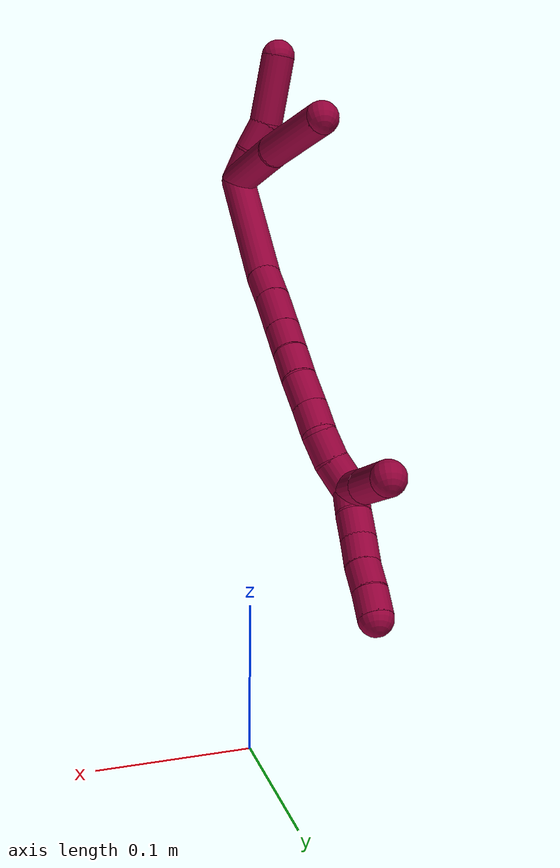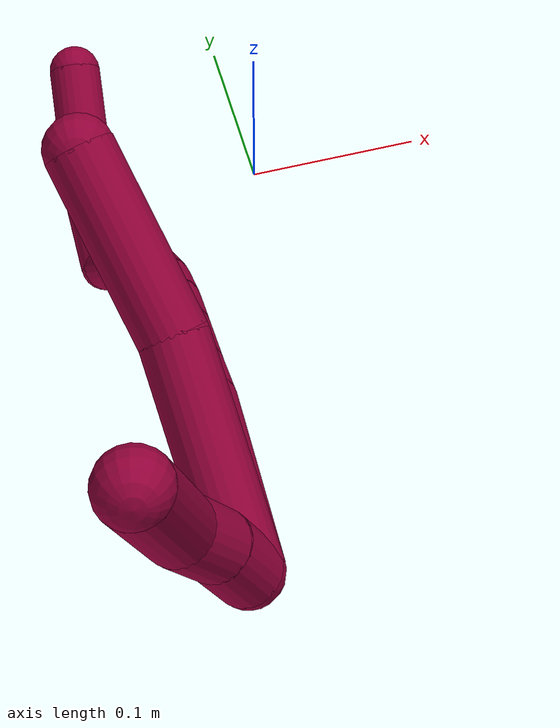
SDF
<sdf version="1.7">
 <world name="default">
  <model name="8">
   <static>0</static>
   <link name="8">
    <collision name="collision-cylinder-e_1_2_8">
     <pose>-0.009132 0.034685 -0.018076 -2.05123 -0.229365 0.375376</pose>
     <geometry><cylinder><radius>0.0125</radius><length>0.080329</length></cylinder></geometry>
     <surface>
      <friction><ode><mu>1.16</mu><mu2>1.16</mu2><slip1>0</slip1><slip2>0</slip2></ode></friction>
      <contact><ode><kp>1e+06</kp><kd>1</kd><max_vel>0</max_vel><min_depth>0.001</min_depth></ode></contact>
     </surface>
    </collision>
    <visual name="visual-cylinder-e_1_2_8">
     <pose>-0.009132 0.034685 -0.018076 -2.05123 -0.229365 0.375376</pose>
     <geometry><cylinder><radius>0.0125</radius><length>0.080329</length></cylinder></geometry>
     <material><ambient>0.584314 0 0.227451 1</ambient></material>
    </visual>
    <collision name="collision-cylinder-e_2_8_6">
     <pose>-0.031387 0.098957 -0.049031 -1.98135 -0.386267 0.580023</pose>
     <geometry><cylinder><radius>0.0125</radius><length>0.069671</length></cylinder></geometry>
     <surface>
      <friction><ode><mu>1.16</mu><mu2>1.16</mu2><slip1>0</slip1><slip2>0</slip2></ode></friction>
      <contact><ode><kp>1e+06</kp><kd>1</kd><max_vel>0</max_vel><min_depth>0.001</min_depth></ode></contact>
     </surface>
    </collision>
    <visual name="visual-cylinder-e_2_8_6">
     <pose>-0.031387 0.098957 -0.049031 -1.98135 -0.386267 0.580023</pose>
     <geometry><cylinder><radius>0.0125</radius><length>0.069671</length></cylinder></geometry>
     <material><ambient>0.584314 0 0.227451 1</ambient></material>
    </visual>
    <collision name="collision-cylinder-e_1_2_9">
     <pose>-0.004806 0.009241 0.006156 -0.983118 -0.408482 0.220888</pose>
     <geometry><cylinder><radius>0.0125</radius><length>0.024198</length></cylinder></geometry>
     <surface>
      <friction><ode><mu>1.16</mu><mu2>1.16</mu2><slip1>0</slip1><slip2>0</slip2></ode></friction>
      <contact><ode><kp>1e+06</kp><kd>1</kd><max_vel>0</max_vel><min_depth>0.001</min_depth></ode></contact>
     </surface>
    </collision>
    <visual name="visual-cylinder-e_1_2_9">
     <pose>-0.004806 0.009241 0.006156 -0.983118 -0.408482 0.220888</pose>
     <geometry><cylinder><radius>0.0125</radius><length>0.024198</length></cylinder></geometry>
     <material><ambient>0.584314 0 0.227451 1</ambient></material>
    </visual>
    <collision name="collision-cylinder-e_2_9_10">
     <pose>-0.015302 0.026316 0.019151 -0.853154 -0.500688 0.231393</pose>
     <geometry><cylinder><radius>0.0125</radius><length>0.023709</length></cylinder></geometry>
     <surface>
      <friction><ode><mu>1.16</mu><mu2>1.16</mu2><slip1>0</slip1><slip2>0</slip2></ode></friction>
      <contact><ode><kp>1e+06</kp><kd>1</kd><max_vel>0</max_vel><min_depth>0.001</min_depth></ode></contact>
     </surface>
    </collision>
    <visual name="visual-cylinder-e_2_9_10">
     <pose>-0.015302 0.026316 0.019151 -0.853154 -0.500688 0.231393</pose>
     <geometry><cylinder><radius>0.0125</radius><length>0.023709</length></cylinder></geometry>
     <material><ambient>0.584314 0 0.227451 1</ambient></material>
    </visual>
    <collision name="collision-cylinder-e_3_10_5">
     <pose>-0.02606 0.052078 0.044192 -0.777778 -0.195809 0.080448</pose>
     <geometry><cylinder><radius>0.0125</radius><length>0.052094</length></cylinder></geometry>
     <surface>
      <friction><ode><mu>1.16</mu><mu2>1.16</mu2><slip1>0</slip1><slip2>0</slip2></ode></friction>
      <contact><ode><kp>1e+06</kp><kd>1</kd><max_vel>0</max_vel><min_depth>0.001</min_depth></ode></contact>
     </surface>
    </collision>
    <visual name="visual-cylinder-e_3_10_5">
     <pose>-0.02606 0.052078 0.044192 -0.777778 -0.195809 0.080448</pose>
     <geometry><cylinder><radius>0.0125</radius><length>0.052094</length></cylinder></geometry>
     <material><ambient>0.584314 0 0.227451 1</ambient></material>
    </visual>
    <collision name="collision-cylinder-e_1_2_11">
     <pose>-0.004633 0.004849 -0.053194 -3.05069 -0.086515 1.5213</pose>
     <geometry><cylinder><radius>0.0125</radius><length>0.107231</length></cylinder></geometry>
     <surface>
      <friction><ode><mu>1.16</mu><mu2>1.16</mu2><slip1>0</slip1><slip2>0</slip2></ode></friction>
      <contact><ode><kp>1e+06</kp><kd>1</kd><max_vel>0</max_vel><min_depth>0.001</min_depth></ode></contact>
     </surface>
    </collision>
    <visual name="visual-cylinder-e_1_2_11">
     <pose>-0.004633 0.004849 -0.053194 -3.05069 -0.086515 1.5213</pose>
     <geometry><cylinder><radius>0.0125</radius><length>0.107231</length></cylinder></geometry>
     <material><ambient>0.584314 0 0.227451 1</ambient></material>
    </visual>
    <collision name="collision-cylinder-e_2_11_12">
     <pose>-0.011095 0.011277 -0.118367 -3.01046 -0.150287 1.70714</pose>
     <geometry><cylinder><radius>0.0125</radius><length>0.02444</length></cylinder></geometry>
     <surface>
      <friction><ode><mu>1.16</mu><mu2>1.16</mu2><slip1>0</slip1><slip2>0</slip2></ode></friction>
      <contact><ode><kp>1e+06</kp><kd>1</kd><max_vel>0</max_vel><min_depth>0.001</min_depth></ode></contact>
     </surface>
    </collision>
    <visual name="visual-cylinder-e_2_11_12">
     <pose>-0.011095 0.011277 -0.118367 -3.01046 -0.150287 1.70714</pose>
     <geometry><cylinder><radius>0.0125</radius><length>0.02444</length></cylinder></geometry>
     <material><ambient>0.584314 0 0.227451 1</ambient></material>
    </visual>
    <collision name="collision-cylinder-e_3_12_13">
     <pose>-0.014912 0.014507 -0.145841 -3.03554 -0.126818 1.7491</pose>
     <geometry><cylinder><radius>0.0125</radius><length>0.031418</length></cylinder></geometry>
     <surface>
      <friction><ode><mu>1.16</mu><mu2>1.16</mu2><slip1>0</slip1><slip2>0</slip2></ode></friction>
      <contact><ode><kp>1e+06</kp><kd>1</kd><max_vel>0</max_vel><min_depth>0.001</min_depth></ode></contact>
     </surface>
    </collision>
    <visual name="visual-cylinder-e_3_12_13">
     <pose>-0.014912 0.014507 -0.145841 -3.03554 -0.126818 1.7491</pose>
     <geometry><cylinder><radius>0.0125</radius><length>0.031418</length></cylinder></geometry>
     <material><ambient>0.584314 0 0.227451 1</ambient></material>
    </visual>
    <collision name="collision-cylinder-e_4_13_14">
     <pose>-0.018396 0.017324 -0.173049 -3.04221 -0.126536 1.8105</pose>
     <geometry><cylinder><radius>0.0125</radius><length>0.023731</length></cylinder></geometry>
     <surface>
      <friction><ode><mu>1.16</mu><mu2>1.16</mu2><slip1>0</slip1><slip2>0</slip2></ode></friction>
      <contact><ode><kp>1e+06</kp><kd>1</kd><max_vel>0</max_vel><min_depth>0.001</min_depth></ode></contact>
     </surface>
    </collision>
    <visual name="visual-cylinder-e_4_13_14">
     <pose>-0.018396 0.017324 -0.173049 -3.04221 -0.126536 1.8105</pose>
     <geometry><cylinder><radius>0.0125</radius><length>0.023731</length></cylinder></geometry>
     <material><ambient>0.584314 0 0.227451 1</ambient></material>
    </visual>
    <collision name="collision-cylinder-e_5_14_15">
     <pose>-0.021649 0.018695 -0.196225 -3.1239 -0.151973 2.91029</pose>
     <geometry><cylinder><radius>0.0125</radius><length>0.023198</length></cylinder></geometry>
     <surface>
      <friction><ode><mu>1.16</mu><mu2>1.16</mu2><slip1>0</slip1><slip2>0</slip2></ode></friction>
      <contact><ode><kp>1e+06</kp><kd>1</kd><max_vel>0</max_vel><min_depth>0.001</min_depth></ode></contact>
     </surface>
    </collision>
    <visual name="visual-cylinder-e_5_14_15">
     <pose>-0.021649 0.018695 -0.196225 -3.1239 -0.151973 2.91029</pose>
     <geometry><cylinder><radius>0.0125</radius><length>0.023198</length></cylinder></geometry>
     <material><ambient>0.584314 0 0.227451 1</ambient></material>
    </visual>
    <collision name="collision-cylinder-e_6_15_16">
     <pose>-0.026073 0.017675 -0.219308 3.03675 -0.224445 -2.27015</pose>
     <geometry><cylinder><radius>0.0125</radius><length>0.023969</length></cylinder></geometry>
     <surface>
      <friction><ode><mu>1.16</mu><mu2>1.16</mu2><slip1>0</slip1><slip2>0</slip2></ode></friction>
      <contact><ode><kp>1e+06</kp><kd>1</kd><max_vel>0</max_vel><min_depth>0.001</min_depth></ode></contact>
     </surface>
    </collision>
    <visual name="visual-cylinder-e_6_15_16">
     <pose>-0.026073 0.017675 -0.219308 3.03675 -0.224445 -2.27015</pose>
     <geometry><cylinder><radius>0.0125</radius><length>0.023969</length></cylinder></geometry>
     <material><ambient>0.584314 0 0.227451 1</ambient></material>
    </visual>
    <collision name="collision-cylinder-e_7_16_17">
     <pose>-0.030903 0.015344 -0.241416 3.0363 -0.202283 -2.1838</pose>
     <geometry><cylinder><radius>0.0125</radius><length>0.021532</length></cylinder></geometry>
     <surface>
      <friction><ode><mu>1.16</mu><mu2>1.16</mu2><slip1>0</slip1><slip2>0</slip2></ode></friction>
      <contact><ode><kp>1e+06</kp><kd>1</kd><max_vel>0</max_vel><min_depth>0.001</min_depth></ode></contact>
     </surface>
    </collision>
    <visual name="visual-cylinder-e_7_16_17">
     <pose>-0.030903 0.015344 -0.241416 3.0363 -0.202283 -2.1838</pose>
     <geometry><cylinder><radius>0.0125</radius><length>0.021532</length></cylinder></geometry>
     <material><ambient>0.584314 0 0.227451 1</ambient></material>
    </visual>
    <collision name="collision-cylinder-e_8_17_18">
     <pose>-0.036704 0.010271 -0.26086 2.72485 -0.355683 -1.40907</pose>
     <geometry><cylinder><radius>0.0125</radius><length>0.020896</length></cylinder></geometry>
     <surface>
      <friction><ode><mu>1.16</mu><mu2>1.16</mu2><slip1>0</slip1><slip2>0</slip2></ode></friction>
      <contact><ode><kp>1e+06</kp><kd>1</kd><max_vel>0</max_vel><min_depth>0.001</min_depth></ode></contact>
     </surface>
    </collision>
    <visual name="visual-cylinder-e_8_17_18">
     <pose>-0.036704 0.010271 -0.26086 2.72485 -0.355683 -1.40907</pose>
     <geometry><cylinder><radius>0.0125</radius><length>0.020896</length></cylinder></geometry>
     <material><ambient>0.584314 0 0.227451 1</ambient></material>
    </visual>
    <collision name="collision-cylinder-e_9_18_1">
     <pose>-0.046299 0.002057 -0.279063 2.71084 -0.529552 -1.7838</pose>
     <geometry><cylinder><radius>0.0125</radius><length>0.023586</length></cylinder></geometry>
     <surface>
      <friction><ode><mu>1.16</mu><mu2>1.16</mu2><slip1>0</slip1><slip2>0</slip2></ode></friction>
      <contact><ode><kp>1e+06</kp><kd>1</kd><max_vel>0</max_vel><min_depth>0.001</min_depth></ode></contact>
     </surface>
    </collision>
    <visual name="visual-cylinder-e_9_18_1">
     <pose>-0.046299 0.002057 -0.279063 2.71084 -0.529552 -1.7838</pose>
     <geometry><cylinder><radius>0.0125</radius><length>0.023586</length></cylinder></geometry>
     <material><ambient>0.584314 0 0.227451 1</ambient></material>
    </visual>
    <collision name="collision-cylinder-e_1_1_19">
     <pose>-0.052189 -0.002167 -0.298311 -3.13901 0.006745 -2.40929</pose>
     <geometry><cylinder><radius>0.0125</radius><length>0.02</length></cylinder></geometry>
     <surface>
      <friction><ode><mu>1.16</mu><mu2>1.16</mu2><slip1>0</slip1><slip2>0</slip2></ode></friction>
      <contact><ode><kp>1e+06</kp><kd>1</kd><max_vel>0</max_vel><min_depth>0.001</min_depth></ode></contact>
     </surface>
    </collision>
    <visual name="visual-cylinder-e_1_1_19">
     <pose>-0.052189 -0.002167 -0.298311 -3.13901 0.006745 -2.40929</pose>
     <geometry><cylinder><radius>0.0125</radius><length>0.02</length></cylinder></geometry>
     <material><ambient>0.584314 0 0.227451 1</ambient></material>
    </visual>
    <collision name="collision-cylinder-e_2_19_20">
     <pose>-0.052722 -0.003219 -0.318234 3.03341 -0.060118 -1.01383</pose>
     <geometry><cylinder><radius>0.0125</radius><length>0.02</length></cylinder></geometry>
     <surface>
      <friction><ode><mu>1.16</mu><mu2>1.16</mu2><slip1>0</slip1><slip2>0</slip2></ode></friction>
      <contact><ode><kp>1e+06</kp><kd>1</kd><max_vel>0</max_vel><min_depth>0.001</min_depth></ode></contact>
     </surface>
    </collision>
    <visual name="visual-cylinder-e_2_19_20">
     <pose>-0.052722 -0.003219 -0.318234 3.03341 -0.060118 -1.01383</pose>
     <geometry><cylinder><radius>0.0125</radius><length>0.02</length></cylinder></geometry>
     <material><ambient>0.584314 0 0.227451 1</ambient></material>
    </visual>
    <collision name="collision-cylinder-e_3_20_21">
     <pose>-0.053542 -0.004714 -0.338147 3.09978 -0.021881 -0.964149</pose>
     <geometry><cylinder><radius>0.0125</radius><length>0.02</length></cylinder></geometry>
     <surface>
      <friction><ode><mu>1.16</mu><mu2>1.16</mu2><slip1>0</slip1><slip2>0</slip2></ode></friction>
      <contact><ode><kp>1e+06</kp><kd>1</kd><max_vel>0</max_vel><min_depth>0.001</min_depth></ode></contact>
     </surface>
    </collision>
    <visual name="visual-cylinder-e_3_20_21">
     <pose>-0.053542 -0.004714 -0.338147 3.09978 -0.021881 -0.964149</pose>
     <geometry><cylinder><radius>0.0125</radius><length>0.02</length></cylinder></geometry>
     <material><ambient>0.584314 0 0.227451 1</ambient></material>
    </visual>
    <collision name="collision-cylinder-e_4_21_22">
     <pose>-0.054921 -0.005186 -0.358068 3.13616 -0.116247 -3.04833</pose>
     <geometry><cylinder><radius>0.0125</radius><length>0.02</length></cylinder></geometry>
     <surface>
      <friction><ode><mu>1.16</mu><mu2>1.16</mu2><slip1>0</slip1><slip2>0</slip2></ode></friction>
      <contact><ode><kp>1e+06</kp><kd>1</kd><max_vel>0</max_vel><min_depth>0.001</min_depth></ode></contact>
     </surface>
    </collision>
    <visual name="visual-cylinder-e_4_21_22">
     <pose>-0.054921 -0.005186 -0.358068 3.13616 -0.116247 -3.04833</pose>
     <geometry><cylinder><radius>0.0125</radius><length>0.02</length></cylinder></geometry>
     <material><ambient>0.584314 0 0.227451 1</ambient></material>
    </visual>
    <collision name="collision-cylinder-e_5_22_4">
     <pose>-0.056877 -0.00598 -0.377941 3.06731 -0.079745 -1.64169</pose>
     <geometry><cylinder><radius>0.0125</radius><length>0.02</length></cylinder></geometry>
     <surface>
      <friction><ode><mu>1.16</mu><mu2>1.16</mu2><slip1>0</slip1><slip2>0</slip2></ode></friction>
      <contact><ode><kp>1e+06</kp><kd>1</kd><max_vel>0</max_vel><min_depth>0.001</min_depth></ode></contact>
     </surface>
    </collision>
    <visual name="visual-cylinder-e_5_22_4">
     <pose>-0.056877 -0.00598 -0.377941 3.06731 -0.079745 -1.64169</pose>
     <geometry><cylinder><radius>0.0125</radius><length>0.02</length></cylinder></geometry>
     <material><ambient>0.584314 0 0.227451 1</ambient></material>
    </visual>
    <collision name="collision-cylinder-e_1_1_23">
     <pose>-0.054903 0.011754 -0.296324 -2.09227 -0.16307 0.280524</pose>
     <geometry><cylinder><radius>0.0125</radius><length>0.032601</length></cylinder></geometry>
     <surface>
      <friction><ode><mu>1.16</mu><mu2>1.16</mu2><slip1>0</slip1><slip2>0</slip2></ode></friction>
      <contact><ode><kp>1e+06</kp><kd>1</kd><max_vel>0</max_vel><min_depth>0.001</min_depth></ode></contact>
     </surface>
    </collision>
    <visual name="visual-cylinder-e_1_1_23">
     <pose>-0.054903 0.011754 -0.296324 -2.09227 -0.16307 0.280524</pose>
     <geometry><cylinder><radius>0.0125</radius><length>0.032601</length></cylinder></geometry>
     <material><ambient>0.584314 0 0.227451 1</ambient></material>
    </visual>
    <collision name="collision-cylinder-e_2_23_3">
     <pose>-0.059261 0.054653 -0.321497 -2.10586 -0.050807 0.089137</pose>
     <geometry><cylinder><radius>0.0125</radius><length>0.067399</length></cylinder></geometry>
     <surface>
      <friction><ode><mu>1.16</mu><mu2>1.16</mu2><slip1>0</slip1><slip2>0</slip2></ode></friction>
      <contact><ode><kp>1e+06</kp><kd>1</kd><max_vel>0</max_vel><min_depth>0.001</min_depth></ode></contact>
     </surface>
    </collision>
    <visual name="visual-cylinder-e_2_23_3">
     <pose>-0.059261 0.054653 -0.321497 -2.10586 -0.050807 0.089137</pose>
     <geometry><cylinder><radius>0.0125</radius><length>0.067399</length></cylinder></geometry>
     <material><ambient>0.584314 0 0.227451 1</ambient></material>
    </visual>
    <collision name="collision-sphere-3">
     <pose>-0.060972 0.083604 -0.338658 0 -0 0</pose>
     <geometry><sphere><radius>0.0125</radius></sphere></geometry>
     <surface>
      <friction><ode><mu>1.16</mu><mu2>1.16</mu2><slip1>0</slip1><slip2>0</slip2></ode></friction>
      <contact><ode><kp>1e+06</kp><kd>1</kd><max_vel>0</max_vel><min_depth>0.001</min_depth></ode></contact>
     </surface>
    </collision>
    <visual name="visual-sphere-3">
     <pose>-0.060972 0.083604 -0.338658 0 -0 0</pose>
     <geometry><sphere><radius>0.0125</radius></sphere></geometry>
     <material><ambient>0.584314 0 0.227451 1</ambient></material>
    </visual>
    <collision name="collision-sphere-23">
     <pose>-0.057549 0.025701 -0.304336 0 -0 0</pose>
     <geometry><sphere><radius>0.0125</radius></sphere></geometry>
     <surface>
      <friction><ode><mu>1.16</mu><mu2>1.16</mu2><slip1>0</slip1><slip2>0</slip2></ode></friction>
      <contact><ode><kp>1e+06</kp><kd>1</kd><max_vel>0</max_vel><min_depth>0.001</min_depth></ode></contact>
     </surface>
    </collision>
    <visual name="visual-sphere-23">
     <pose>-0.057549 0.025701 -0.304336 0 -0 0</pose>
     <geometry><sphere><radius>0.0125</radius></sphere></geometry>
     <material><ambient>0.584314 0 0.227451 1</ambient></material>
    </visual>
    <collision name="collision-sphere-4">
     <pose>-0.057674 -0.00672 -0.387882 0 -0 0</pose>
     <geometry><sphere><radius>0.0125</radius></sphere></geometry>
     <surface>
      <friction><ode><mu>1.16</mu><mu2>1.16</mu2><slip1>0</slip1><slip2>0</slip2></ode></friction>
      <contact><ode><kp>1e+06</kp><kd>1</kd><max_vel>0</max_vel><min_depth>0.001</min_depth></ode></contact>
     </surface>
    </collision>
    <visual name="visual-sphere-4">
     <pose>-0.057674 -0.00672 -0.387882 0 -0 0</pose>
     <geometry><sphere><radius>0.0125</radius></sphere></geometry>
     <material><ambient>0.584314 0 0.227451 1</ambient></material>
    </visual>
    <collision name="collision-sphere-22">
     <pose>-0.05608 -0.00524 -0.368 0 -0 0</pose>
     <geometry><sphere><radius>0.0125</radius></sphere></geometry>
     <surface>
      <friction><ode><mu>1.16</mu><mu2>1.16</mu2><slip1>0</slip1><slip2>0</slip2></ode></friction>
      <contact><ode><kp>1e+06</kp><kd>1</kd><max_vel>0</max_vel><min_depth>0.001</min_depth></ode></contact>
     </surface>
    </collision>
    <visual name="visual-sphere-22">
     <pose>-0.05608 -0.00524 -0.368 0 -0 0</pose>
     <geometry><sphere><radius>0.0125</radius></sphere></geometry>
     <material><ambient>0.584314 0 0.227451 1</ambient></material>
    </visual>
    <collision name="collision-sphere-21">
     <pose>-0.053761 -0.005132 -0.348136 0 -0 0</pose>
     <geometry><sphere><radius>0.0125</radius></sphere></geometry>
     <surface>
      <friction><ode><mu>1.16</mu><mu2>1.16</mu2><slip1>0</slip1><slip2>0</slip2></ode></friction>
      <contact><ode><kp>1e+06</kp><kd>1</kd><max_vel>0</max_vel><min_depth>0.001</min_depth></ode></contact>
     </surface>
    </collision>
    <visual name="visual-sphere-21">
     <pose>-0.053761 -0.005132 -0.348136 0 -0 0</pose>
     <geometry><sphere><radius>0.0125</radius></sphere></geometry>
     <material><ambient>0.584314 0 0.227451 1</ambient></material>
    </visual>
    <collision name="collision-sphere-20">
     <pose>-0.053323 -0.004296 -0.328158 0 -0 0</pose>
     <geometry><sphere><radius>0.0125</radius></sphere></geometry>
     <surface>
      <friction><ode><mu>1.16</mu><mu2>1.16</mu2><slip1>0</slip1><slip2>0</slip2></ode></friction>
      <contact><ode><kp>1e+06</kp><kd>1</kd><max_vel>0</max_vel><min_depth>0.001</min_depth></ode></contact>
     </surface>
    </collision>
    <visual name="visual-sphere-20">
     <pose>-0.053323 -0.004296 -0.328158 0 -0 0</pose>
     <geometry><sphere><radius>0.0125</radius></sphere></geometry>
     <material><ambient>0.584314 0 0.227451 1</ambient></material>
    </visual>
    <collision name="collision-sphere-5">
     <pose>-0.031128 0.070005 0.062396 0 -0 0</pose>
     <geometry><sphere><radius>0.0125</radius></sphere></geometry>
     <surface>
      <friction><ode><mu>1.16</mu><mu2>1.16</mu2><slip1>0</slip1><slip2>0</slip2></ode></friction>
      <contact><ode><kp>1e+06</kp><kd>1</kd><max_vel>0</max_vel><min_depth>0.001</min_depth></ode></contact>
     </surface>
    </collision>
    <visual name="visual-sphere-5">
     <pose>-0.031128 0.070005 0.062396 0 -0 0</pose>
     <geometry><sphere><radius>0.0125</radius></sphere></geometry>
     <material><ambient>0.584314 0 0.227451 1</ambient></material>
    </visual>
    <collision name="collision-sphere-10">
     <pose>-0.020993 0.03415 0.025989 0 -0 0</pose>
     <geometry><sphere><radius>0.0125</radius></sphere></geometry>
     <surface>
      <friction><ode><mu>1.16</mu><mu2>1.16</mu2><slip1>0</slip1><slip2>0</slip2></ode></friction>
      <contact><ode><kp>1e+06</kp><kd>1</kd><max_vel>0</max_vel><min_depth>0.001</min_depth></ode></contact>
     </surface>
    </collision>
    <visual name="visual-sphere-10">
     <pose>-0.020993 0.03415 0.025989 0 -0 0</pose>
     <geometry><sphere><radius>0.0125</radius></sphere></geometry>
     <material><ambient>0.584314 0 0.227451 1</ambient></material>
    </visual>
    <collision name="collision-sphere-6">
     <pose>-0.044511 0.128545 -0.06191 0 -0 0</pose>
     <geometry><sphere><radius>0.0125</radius></sphere></geometry>
     <surface>
      <friction><ode><mu>1.16</mu><mu2>1.16</mu2><slip1>0</slip1><slip2>0</slip2></ode></friction>
      <contact><ode><kp>1e+06</kp><kd>1</kd><max_vel>0</max_vel><min_depth>0.001</min_depth></ode></contact>
     </surface>
    </collision>
    <visual name="visual-sphere-6">
     <pose>-0.044511 0.128545 -0.06191 0 -0 0</pose>
     <geometry><sphere><radius>0.0125</radius></sphere></geometry>
     <material><ambient>0.584314 0 0.227451 1</ambient></material>
    </visual>
    <collision name="collision-sphere-9">
     <pose>-0.009612 0.018481 0.012312 0 -0 0</pose>
     <geometry><sphere><radius>0.0125</radius></sphere></geometry>
     <surface>
      <friction><ode><mu>1.16</mu><mu2>1.16</mu2><slip1>0</slip1><slip2>0</slip2></ode></friction>
      <contact><ode><kp>1e+06</kp><kd>1</kd><max_vel>0</max_vel><min_depth>0.001</min_depth></ode></contact>
     </surface>
    </collision>
    <visual name="visual-sphere-9">
     <pose>-0.009612 0.018481 0.012312 0 -0 0</pose>
     <geometry><sphere><radius>0.0125</radius></sphere></geometry>
     <material><ambient>0.584314 0 0.227451 1</ambient></material>
    </visual>
    <collision name="collision-sphere-2">
     <geometry><sphere><radius>0.0125</radius></sphere></geometry>
     <surface>
      <friction><ode><mu>1.16</mu><mu2>1.16</mu2><slip1>0</slip1><slip2>0</slip2></ode></friction>
      <contact><ode><kp>1e+06</kp><kd>1</kd><max_vel>0</max_vel><min_depth>0.001</min_depth></ode></contact>
     </surface>
    </collision>
    <visual name="visual-sphere-2">
     <geometry><sphere><radius>0.0125</radius></sphere></geometry>
     <material><ambient>0.584314 0 0.227451 1</ambient></material>
    </visual>
    <collision name="collision-sphere-19">
     <pose>-0.052122 -0.002141 -0.308311 0 -0 0</pose>
     <geometry><sphere><radius>0.0125</radius></sphere></geometry>
     <surface>
      <friction><ode><mu>1.16</mu><mu2>1.16</mu2><slip1>0</slip1><slip2>0</slip2></ode></friction>
      <contact><ode><kp>1e+06</kp><kd>1</kd><max_vel>0</max_vel><min_depth>0.001</min_depth></ode></contact>
     </surface>
    </collision>
    <visual name="visual-sphere-19">
     <pose>-0.052122 -0.002141 -0.308311 0 -0 0</pose>
     <geometry><sphere><radius>0.0125</radius></sphere></geometry>
     <material><ambient>0.584314 0 0.227451 1</ambient></material>
    </visual>
    <collision name="collision-sphere-8">
     <pose>-0.018263 0.069369 -0.036152 0 -0 0</pose>
     <geometry><sphere><radius>0.0125</radius></sphere></geometry>
     <surface>
      <friction><ode><mu>1.16</mu><mu2>1.16</mu2><slip1>0</slip1><slip2>0</slip2></ode></friction>
      <contact><ode><kp>1e+06</kp><kd>1</kd><max_vel>0</max_vel><min_depth>0.001</min_depth></ode></contact>
     </surface>
    </collision>
    <visual name="visual-sphere-8">
     <pose>-0.018263 0.069369 -0.036152 0 -0 0</pose>
     <geometry><sphere><radius>0.0125</radius></sphere></geometry>
     <material><ambient>0.584314 0 0.227451 1</ambient></material>
    </visual>
    <collision name="collision-sphere-11">
     <pose>-0.009266 0.009698 -0.106389 0 -0 0</pose>
     <geometry><sphere><radius>0.0125</radius></sphere></geometry>
     <surface>
      <friction><ode><mu>1.16</mu><mu2>1.16</mu2><slip1>0</slip1><slip2>0</slip2></ode></friction>
      <contact><ode><kp>1e+06</kp><kd>1</kd><max_vel>0</max_vel><min_depth>0.001</min_depth></ode></contact>
     </surface>
    </collision>
    <visual name="visual-sphere-11">
     <pose>-0.009266 0.009698 -0.106389 0 -0 0</pose>
     <geometry><sphere><radius>0.0125</radius></sphere></geometry>
     <material><ambient>0.584314 0 0.227451 1</ambient></material>
    </visual>
    <collision name="collision-sphere-12">
     <pose>-0.012925 0.012857 -0.130346 0 -0 0</pose>
     <geometry><sphere><radius>0.0125</radius></sphere></geometry>
     <surface>
      <friction><ode><mu>1.16</mu><mu2>1.16</mu2><slip1>0</slip1><slip2>0</slip2></ode></friction>
      <contact><ode><kp>1e+06</kp><kd>1</kd><max_vel>0</max_vel><min_depth>0.001</min_depth></ode></contact>
     </surface>
    </collision>
    <visual name="visual-sphere-12">
     <pose>-0.012925 0.012857 -0.130346 0 -0 0</pose>
     <geometry><sphere><radius>0.0125</radius></sphere></geometry>
     <material><ambient>0.584314 0 0.227451 1</ambient></material>
    </visual>
    <collision name="collision-sphere-13">
     <pose>-0.016898 0.016156 -0.161337 0 -0 0</pose>
     <geometry><sphere><radius>0.0125</radius></sphere></geometry>
     <surface>
      <friction><ode><mu>1.16</mu><mu2>1.16</mu2><slip1>0</slip1><slip2>0</slip2></ode></friction>
      <contact><ode><kp>1e+06</kp><kd>1</kd><max_vel>0</max_vel><min_depth>0.001</min_depth></ode></contact>
     </surface>
    </collision>
    <visual name="visual-sphere-13">
     <pose>-0.016898 0.016156 -0.161337 0 -0 0</pose>
     <geometry><sphere><radius>0.0125</radius></sphere></geometry>
     <material><ambient>0.584314 0 0.227451 1</ambient></material>
    </visual>
    <collision name="collision-sphere-14">
     <pose>-0.019893 0.018492 -0.184761 0 -0 0</pose>
     <geometry><sphere><radius>0.0125</radius></sphere></geometry>
     <surface>
      <friction><ode><mu>1.16</mu><mu2>1.16</mu2><slip1>0</slip1><slip2>0</slip2></ode></friction>
      <contact><ode><kp>1e+06</kp><kd>1</kd><max_vel>0</max_vel><min_depth>0.001</min_depth></ode></contact>
     </surface>
    </collision>
    <visual name="visual-sphere-14">
     <pose>-0.019893 0.018492 -0.184761 0 -0 0</pose>
     <geometry><sphere><radius>0.0125</radius></sphere></geometry>
     <material><ambient>0.584314 0 0.227451 1</ambient></material>
    </visual>
    <collision name="collision-sphere-15">
     <pose>-0.023405 0.018898 -0.207689 0 -0 0</pose>
     <geometry><sphere><radius>0.0125</radius></sphere></geometry>
     <surface>
      <friction><ode><mu>1.16</mu><mu2>1.16</mu2><slip1>0</slip1><slip2>0</slip2></ode></friction>
      <contact><ode><kp>1e+06</kp><kd>1</kd><max_vel>0</max_vel><min_depth>0.001</min_depth></ode></contact>
     </surface>
    </collision>
    <visual name="visual-sphere-15">
     <pose>-0.023405 0.018898 -0.207689 0 -0 0</pose>
     <geometry><sphere><radius>0.0125</radius></sphere></geometry>
     <material><ambient>0.584314 0 0.227451 1</ambient></material>
    </visual>
    <collision name="collision-sphere-16">
     <pose>-0.02874 0.016452 -0.230928 0 -0 0</pose>
     <geometry><sphere><radius>0.0125</radius></sphere></geometry>
     <surface>
      <friction><ode><mu>1.16</mu><mu2>1.16</mu2><slip1>0</slip1><slip2>0</slip2></ode></friction>
      <contact><ode><kp>1e+06</kp><kd>1</kd><max_vel>0</max_vel><min_depth>0.001</min_depth></ode></contact>
     </surface>
    </collision>
    <visual name="visual-sphere-16">
     <pose>-0.02874 0.016452 -0.230928 0 -0 0</pose>
     <geometry><sphere><radius>0.0125</radius></sphere></geometry>
     <material><ambient>0.584314 0 0.227451 1</ambient></material>
    </visual>
    <collision name="collision-sphere-17">
     <pose>-0.033066 0.014236 -0.251904 0 -0 0</pose>
     <geometry><sphere><radius>0.0125</radius></sphere></geometry>
     <surface>
      <friction><ode><mu>1.16</mu><mu2>1.16</mu2><slip1>0</slip1><slip2>0</slip2></ode></friction>
      <contact><ode><kp>1e+06</kp><kd>1</kd><max_vel>0</max_vel><min_depth>0.001</min_depth></ode></contact>
     </surface>
    </collision>
    <visual name="visual-sphere-17">
     <pose>-0.033066 0.014236 -0.251904 0 -0 0</pose>
     <geometry><sphere><radius>0.0125</radius></sphere></geometry>
     <material><ambient>0.584314 0 0.227451 1</ambient></material>
    </visual>
    <collision name="collision-sphere-18">
     <pose>-0.040342 0.006307 -0.269815 0 -0 0</pose>
     <geometry><sphere><radius>0.0125</radius></sphere></geometry>
     <surface>
      <friction><ode><mu>1.16</mu><mu2>1.16</mu2><slip1>0</slip1><slip2>0</slip2></ode></friction>
      <contact><ode><kp>1e+06</kp><kd>1</kd><max_vel>0</max_vel><min_depth>0.001</min_depth></ode></contact>
     </surface>
    </collision>
    <visual name="visual-sphere-18">
     <pose>-0.040342 0.006307 -0.269815 0 -0 0</pose>
     <geometry><sphere><radius>0.0125</radius></sphere></geometry>
     <material><ambient>0.584314 0 0.227451 1</ambient></material>
    </visual>
    <collision name="collision-sphere-1">
     <pose>-0.052256 -0.002193 -0.288311 0 -0 0</pose>
     <geometry><sphere><radius>0.0125</radius></sphere></geometry>
     <surface>
      <friction><ode><mu>1.16</mu><mu2>1.16</mu2><slip1>0</slip1><slip2>0</slip2></ode></friction>
      <contact><ode><kp>1e+06</kp><kd>1</kd><max_vel>0</max_vel><min_depth>0.001</min_depth></ode></contact>
     </surface>
    </collision>
    <visual name="visual-sphere-1">
     <pose>-0.052256 -0.002193 -0.288311 0 -0 0</pose>
     <geometry><sphere><radius>0.0125</radius></sphere></geometry>
     <material><ambient>0.584314 0 0.227451 1</ambient></material>
    </visual>
    <inertial>
     <pose>-0.028361 0.026661 -0.148575 0 -0 0</pose>
     <mass>0.75</mass>
     <inertia>
      <ixx>0.000244</ixx>
      <ixy>0</ixy>
      <ixz>0</ixz>
      <iyy>0.000142</iyy>
      <iyz>0</iyz>
      <izz>-0.000107</izz>
     </inertia>
    </inertial>
   </link>
   <pose>-0.099968 -0.370571 0.273594 0.996856 -0.012574 -0.171601</pose>
  </model>
 </world>
</sdf>
